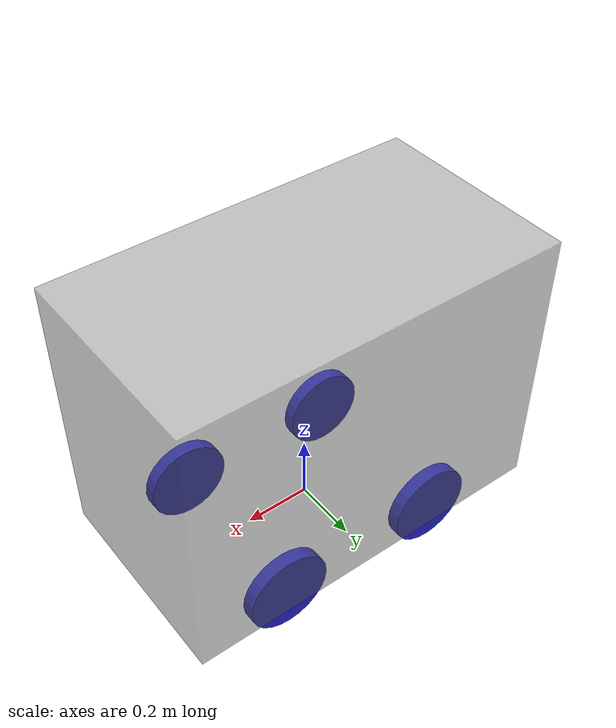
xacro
<?xml version="1.0"?>
<robot xmlns:xacro="http://www.ros.org/wiki/xacro" >

    <xacro:include filename="inertial_macros.xacro"/>

    <material name="white">
        <color rgba="1 1 1 1" />
    </material>

    <material name="orange">
        <color rgba="1 0.3 0.1 1"/>
    </material>

    <material name="blue">
        <color rgba="0.2 0.2 1 1"/>
    </material>

    <material name="black">
        <color rgba="0 0 0 1"/>
    </material>

    <material name="gray">
        <color rgba="0.5 0.5 0.5 0.5"/>
    </material>

    <!-- BASE LINK: center of cart -->

    <link name="base_link">

    </link>

    <!-- CHASSIS LINK -->

    <joint name="chassis_joint" type="fixed">
        <parent link="base_link"/>
        <child link="chassis"/>
        <origin xyz="0 0 0"/>
    </joint>

    <link name="chassis">
        <visual>
            <origin xyz="0 0 0.4191"/>
            <geometry>
                <box size="1.143 0.635 0.8382"/>        <!-- Cart Dimensions-->
            </geometry>
            <material name="gray"/>
        </visual>
        <collision>
            <origin xyz="0 0 0.4191"/>
            <geometry>
                <box size="1.143 0.635 0.8382"/>        <!-- Cart Dimensions-->
            </geometry>
        </collision>
        <xacro:inertial_box mass="19.5" x="1.143" y="0.635" z="0.8382">
            <origin xyz="0.5715 0 0.04191" rpy="0 0 0"/>
        </xacro:inertial_box>
    </link>

    <gazebo reference="chassis">
        <material>Gazebo/Gray</material>
    </gazebo>

    <!-- LEFT DRIVER WHEEL LINK -->

    <joint name="left_wheel_joint" type="continuous">
        <parent link="base_link"/>
        <child link="left_wheel"/>
        <origin xyz="0.257175 0.254 0" rpy="-${pi/2} 0 0" />
        <axis xyz="0 0 1"/>
    </joint>

    <link name="left_wheel">
        <visual>
            <geometry>
                <cylinder radius="0.127" length="0.04"/>
            </geometry>
            <material name="blue"/>
        </visual>
        <collision>
            <geometry>
                <cylinder radius="0.127" length="0.04"/>
            </geometry>
        </collision>
        <xacro:inertial_cylinder mass="0.1" length="0.04" radius="0.127">
            <origin xyz="0 0 0" rpy="0 0 0"/>
        </xacro:inertial_cylinder>
    </link>

    <gazebo reference="left_wheel">
        <material>Gazebo/Blue</material>
    </gazebo>

    <!-- RIGHT DRIVER WHEEL LINK -->

    <joint name="right_wheel_joint" type="continuous">
        <parent link="base_link"/>
        <child link="right_wheel"/>
        <origin xyz="0.257175 -0.254 0" rpy="${pi/2} 0 0" />
        <axis xyz="0 0 -1"/>
    </joint>

    <link name="right_wheel">
        <visual>
            <geometry>
                <cylinder radius="0.127" length="0.04"/>
            </geometry>
            <material name="blue"/>
        </visual>
        <collision>
            <geometry>
                <cylinder radius="0.127" length="0.04"/>
            </geometry>
        </collision>
        <xacro:inertial_cylinder mass="0.1" length="0.04" radius="0.127">
            <origin xyz="0 0 0" rpy="0 0 0"/>
        </xacro:inertial_cylinder>
    </link>

    <gazebo reference="right_wheel">
        <material>Gazebo/Blue</material>
    </gazebo>
    <!-- LEFT FIXED WHEEL LINK -->

    <joint name="left_fixed_wheel_joint" type="continuous">
        <parent link="base_link"/>
        <child link="left_fixed_wheel"/>
        <origin xyz="-0.257175 0.254 0" rpy="-${pi/2} 0 0" />
        <axis xyz="0 0 1"/>
    </joint>

    <link name="left_fixed_wheel">
        <visual>
            <geometry>
                <cylinder radius="0.127" length="0.04"/>
            </geometry>
            <material name="blue"/>
        </visual>
        <collision>
            <geometry>
                <cylinder radius="0.127" length="0.04"/>
            </geometry>
        </collision>
        <xacro:inertial_cylinder mass="0.1" length="0.04" radius="0.127">
            <origin xyz="0 0 0" rpy="0 0 0"/>
        </xacro:inertial_cylinder>
    </link>

    <gazebo reference="left_fixed_wheel">
        <material>Gazebo/Blue</material>
        <mu1 value="0.001"/>                  <!--friction coefficients-->
        <mu2 value="0.001"/>
    </gazebo>

    <!-- RIGHT FIXED WHEEL LINK -->

    <joint name="right_fixed_wheel_joint" type="continuous">
        <parent link="base_link"/>
        <child link="right_fixed_wheel"/>
        <origin xyz="-0.257175  -0.254 0" rpy="${pi/2} 0 0" />
        <axis xyz="0 0 -1"/>
    </joint>

    <link name="right_fixed_wheel">
        <visual>
            <geometry>
                <cylinder radius="0.127" length="0.04"/>
            </geometry>
            <material name="blue"/>
        </visual>
        <collision>
            <geometry>
                <cylinder radius="0.127" length="0.04"/>
            </geometry>
        </collision>
        <xacro:inertial_cylinder mass="0.1" length="0.04" radius="0.127">
            <origin xyz="0 0 0" rpy="0 0 0"/>
        </xacro:inertial_cylinder>
    </link>

    <gazebo reference="right_fixed_wheel">
        <material>Gazebo/Blue</material>
        <mu1 value="0.001"/>                    <!--friction coefficients-->
        <mu2 value="0.001"/>
    </gazebo>

</robot>
